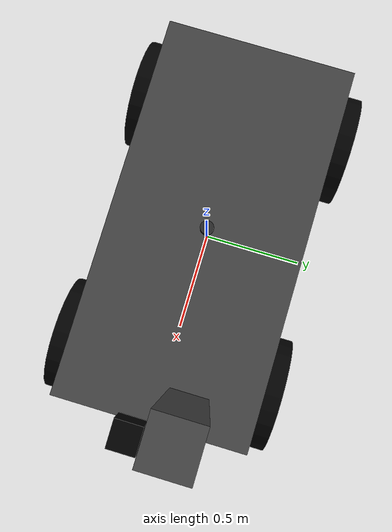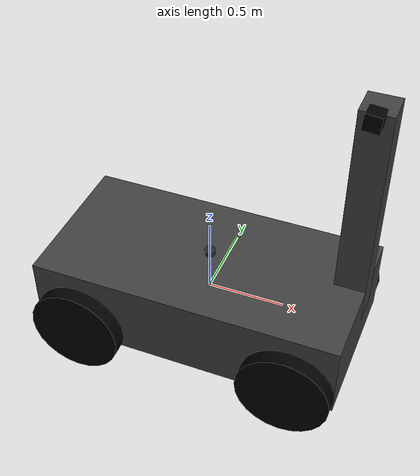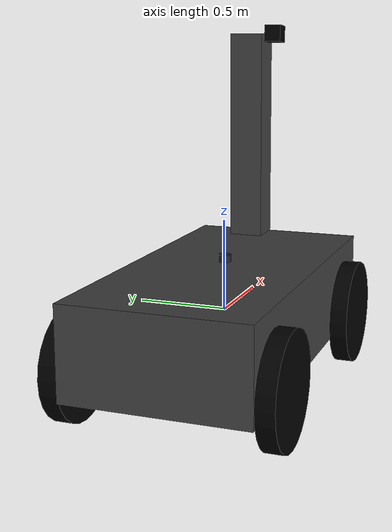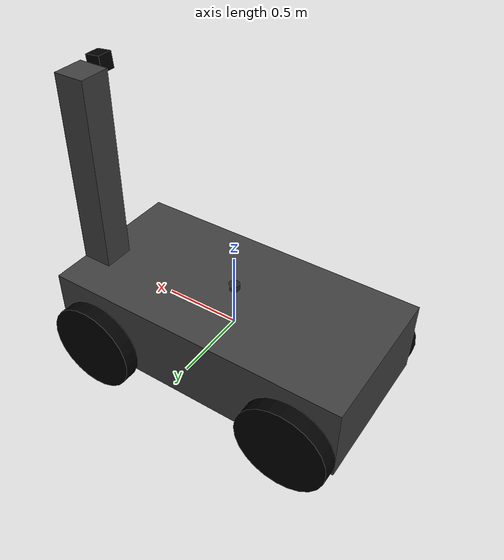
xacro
<?xml version="1.0"?>

<robot name="ackermann_steering_vehicle" xmlns:xacro="http://www.ros.org/wiki/xacro">

  <!-- Arguments -->
  <xacro:arg name="body_length" default="2.0" />
  <xacro:arg name="body_width" default="1.0" />
  <xacro:arg name="body_height" default="0.5" />
  <xacro:arg name="body_density" default="1000.0" />
  <xacro:arg name="wheel_radius" default="0.3" />
  <xacro:arg name="wheel_width" default="0.1" />
  <xacro:arg name="wheel_density" default="1000.0" />
  <xacro:arg name="max_steering_angle" default="0.6108" />
  <xacro:arg name="max_steering_angular_velocity" default="1.570796" />
  <xacro:arg name="max_steering_effort" default="1.0" />
  <xacro:arg name="max_velocity" default="1.0" />
  <xacro:arg name="max_effort" default="10.0" />
  <xacro:arg name="camera_box_size" default="0.1" />
  <xacro:arg name="camera_stick_size" default="0.2" />
  <xacro:arg name="camera_height" default="1.5" />
  <xacro:arg name="camera_pitch" default="0.1" />
  <xacro:arg name="camera_fov" default="1.396263" />
  <xacro:arg name="camera_fps" default="30" />
  <xacro:arg name="image_width" default="640" />
  <xacro:arg name="image_height" default="480" />

  <!-- Mathematical Constants -->
  <xacro:property name="PI" value="3.14159265"/>

  <!-- Vehicle Properties -->
  <xacro:property name="body_length" value="$(arg body_length)"/>
  <xacro:property name="body_width" value="$(arg body_width)"/>
  <xacro:property name="body_height" value="$(arg body_height)"/>
  <xacro:property name="body_density" value="$(arg body_density)"/>
  <xacro:property name="wheel_radius" value="$(arg wheel_radius)"/>
  <xacro:property name="wheel_width" value="$(arg wheel_width)"/>
  <xacro:property name="wheel_density" value="$(arg wheel_density)"/>
  <xacro:property name="max_steering_angle" value="$(arg max_steering_angle)"/>
  <xacro:property name="max_steering_angular_velocity" value="$(arg max_steering_angular_velocity)"/>
  <xacro:property name="max_steering_effort" value="$(arg max_steering_effort)"/>
  <xacro:property name="max_velocity" value="$(arg max_velocity)"/>
  <xacro:property name="max_effort" value="$(arg max_effort)"/>
  <xacro:property name="camera_box_size" value="$(arg camera_box_size)"/>
  <xacro:property name="camera_stick_size" value="$(arg camera_stick_size)"/>
  <xacro:property name="camera_height" value="$(arg camera_height)"/>
  <xacro:property name="camera_pitch" value="$(arg camera_pitch)"/>
  <xacro:property name="camera_fov" value="$(arg camera_fov)"/>
  <xacro:property name="camera_fps" value="$(arg camera_fps)"/>
  <xacro:property name="image_width" value="$(arg image_width)"/>
  <xacro:property name="image_height" value="$(arg image_height)"/>

  <xacro:property name="body_mass" value="${body_density * body_length * body_height * body_width}"/>
  <xacro:property name="body_inertia_x" value="${1.0/12.0 * body_mass * (body_height*body_height + body_width*body_width)}"/>
  <xacro:property name="body_inertia_y" value="${1.0/12.0 * body_mass * (body_length*body_length + body_height*body_height)}"/>
  <xacro:property name="body_inertia_z" value="${1.0/12.0 * body_mass * (body_length*body_length + body_width*body_width)}"/>
  <xacro:property name="wheel_separation" value="${body_width + wheel_width}"/>
  <xacro:property name="wheel_offset" value="${body_length/2 - wheel_radius}"/>
  <xacro:property name="wheel_mass" value="${wheel_density * PI * wheel_radius * wheel_radius * wheel_width}"/>
  <xacro:property name="wheel_inertia_x" value="${1.0/12.0 * wheel_mass * (3*wheel_radius*wheel_radius + wheel_width*wheel_width)}"/>
  <xacro:property name="wheel_inertia_y" value="${1.0/12.0 * wheel_mass * (3*wheel_radius*wheel_radius + wheel_width*wheel_width)}"/>
  <xacro:property name="wheel_inertia_z" value="${1.0/2.0 * wheel_mass * wheel_radius * wheel_radius}"/>
  <xacro:property name="max_wheel_angular_velocity" value="${max_velocity / wheel_radius}"/>

  <!-- Links -->

  <!-- Body Link -->
  <link name="body_link">
    <visual>
      <origin xyz="0.0 0.0 0.0" rpy="0.0 0.0 0.0"/>
      <geometry>
        <box size="${body_length} ${body_width} ${body_height}"/>
      </geometry>
      <material name="body_material">
        <color rgba="0.25 0.25 0.25 1.0"/>
      </material>
    </visual>
    <collision>
      <origin xyz="0.0 0.0 0.0" rpy="0.0 0.0 0.0"/>
      <geometry>
        <box size="${body_length} ${body_width} ${body_height}"/>
      </geometry>
    </collision>
    <inertial>
      <mass value="${body_mass}"/>
      <inertia ixx="${body_inertia_x}" ixy="0.0" ixz="0.0" iyy="${body_inertia_y}" iyz="0" izz="${body_inertia_z}"/>
      <origin xyz="0 0 0" rpy="0 0 0"/>
    </inertial>
  </link>

  <!-- Front Left Wheel -->
  <link name="front_left_wheel_link">
    <visual>
      <origin xyz="0.0 0.0 0.0" rpy="1.570795 0.0 0.0"/>
      <geometry>
        <cylinder radius="${wheel_radius}" length="${wheel_width}"/>
      </geometry>
      <material name="wheel_material">
        <color rgba="0.0 0.0 0.0 1.0"/>
      </material>
    </visual>
    <collision>
      <origin xyz="0.0 0.0 0.0" rpy="1.570795 0.0 0.0"/>
      <geometry>
        <cylinder radius="${wheel_radius}" length="${wheel_width}"/>
      </geometry>
    </collision>
    <inertial>
      <mass value="${wheel_mass}"/>
      <inertia ixx="${wheel_inertia_x}" ixy="0.0" ixz="0.0" iyy="${wheel_inertia_y}" iyz="0" izz="${wheel_inertia_z}"/>
      <origin xyz="0.0 0.0 0.0" rpy="1.570795 0.0 0.0"/>
    </inertial>
  </link>

    <!-- Front Left Wheel Steering -->
  <link name="front_left_steering_link">
    <visual>
      <origin xyz="0.0 0.0 0.0" rpy="1.570795 0.0 0.0"/>
      <geometry>
        <cylinder length="0.001" radius="0.01"/>
      </geometry>
      <material name="wheel_material">
        <color rgba="0.0 0.0 0.0 1.0"/>
      </material>
    </visual>
    <inertial>
      <mass value="0.01"/>
      <inertia ixx="1e-5" ixy="0.0" ixz="0.0" iyy="1e-5" iyz="0.0" izz="1e-5"/>
      <origin xyz="0.0 0.0 0.0" rpy="1.570795 0.0 0.0"/>
    </inertial>
  </link>

  <!-- Front Right Wheel -->
  <link name="front_right_wheel_link">
    <visual>
      <origin xyz="0.0 0.0 0.0" rpy="1.570795 0.0 0.0"/>
      <geometry>
        <cylinder radius="${wheel_radius}" length="${wheel_width}"/>
      </geometry>
      <material name="wheel_material">
        <color rgba="0.0 0.0 0.0 1.0"/>
      </material>
    </visual>
    <collision>
      <origin xyz="0.0 0.0 0.0" rpy="1.570795 0.0 0.0"/>
      <geometry>
        <cylinder radius="${wheel_radius}" length="${wheel_width}"/>
      </geometry>
    </collision>
    <inertial>
      <mass value="${wheel_mass}"/>
      <inertia ixx="${wheel_inertia_x}" ixy="0.0" ixz="0.0" iyy="${wheel_inertia_y}" iyz="0" izz="${wheel_inertia_z}"/>
      <origin xyz="0.0 0.0 0.0" rpy="1.570795 0.0 0.0"/>
    </inertial>
  </link>

  <!-- Front Right Wheel Steering -->
  <link name="front_right_steering_link">
    <visual>
      <origin xyz="0.0 0.0 0.0" rpy="1.570795 0.0 0.0"/>
      <geometry>
        <cylinder length="0.001" radius="0.01"/>
      </geometry>
      <material name="wheel_material">
        <color rgba="0.0 0.0 0.0 1.0"/>
      </material>
    </visual>
    <inertial>
      <mass value="0.01"/>
      <inertia ixx="1e-5" ixy="0.0" ixz="0.0" iyy="1e-5" iyz="0.0" izz="1e-5"/>
      <origin xyz="0.0 0.0 0.0" rpy="1.570795 0.0 0.0"/>
    </inertial>
  </link>

  <!-- Rear Left Wheel -->
  <link name="rear_left_wheel_link">
    <visual>
      <origin xyz="0.0 0.0 0.0" rpy="1.570795 0.0 0.0"/>
      <geometry>
        <cylinder radius="${wheel_radius}" length="${wheel_width}"/>
      </geometry>
      <material name="wheel_material">
        <color rgba="0.0 0.0 0.0 1.0"/>
      </material>
    </visual>
    <collision>
      <origin xyz="0.0 0.0 0.0" rpy="1.570795 0.0 0.0"/>
      <geometry>
        <cylinder radius="${wheel_radius}" length="${wheel_width}"/>
      </geometry>
    </collision>
    <inertial>
      <mass value="${wheel_mass}"/>
      <inertia ixx="${wheel_inertia_x}" ixy="0.0" ixz="0.0" iyy="${wheel_inertia_y}" iyz="0" izz="${wheel_inertia_z}"/>
      <origin xyz="0.0 0.0 0.0" rpy="1.570795 0.0 0.0"/>
    </inertial>
  </link>

  <!-- Rear Right Wheel -->
  <link name="rear_right_wheel_link">
    <visual>
      <origin xyz="0.0 0.0 0.0" rpy="1.570795 0.0 0.0"/>
      <geometry>
        <cylinder radius="${wheel_radius}" length="${wheel_width}"/>
      </geometry>
      <material name="wheel_material">
        <color rgba="0.0 0.0 0.0 1.0"/>
      </material>
    </visual>
    <collision>
      <origin xyz="0.0 0.0 0.0" rpy="1.570795 0.0 0.0"/>
      <geometry>
        <cylinder radius="${wheel_radius}" length="${wheel_width}"/>
      </geometry>
    </collision>
    <inertial>
      <mass value="${wheel_mass}"/>
      <inertia ixx="${wheel_inertia_x}" ixy="0.0" ixz="0.0" iyy="${wheel_inertia_y}" iyz="0" izz="${wheel_inertia_z}"/>
      <origin xyz="0.0 0.0 0.0" rpy="1.570795 0.0 0.0"/>
    </inertial>
  </link>

  <!-- Camera Stick Link -->
  <link name="camera_stick_link">
    <collision>
      <origin xyz="0 0 0" rpy="0 0 0"/>
      <geometry>
        <box size="${camera_stick_size} ${camera_stick_size} ${camera_height}"/>
      </geometry>
    </collision>

    <visual>
      <origin xyz="0 0 0" rpy="0 0 0"/>
      <geometry>
        <box size="${camera_stick_size} ${camera_stick_size} ${camera_height}"/>
      </geometry>

      <material name="camera_stick_material">
        <color rgba="0.25 0.25 0.25 1.0"/>
      </material>
    </visual>

    <inertial>
      <mass value="1e-5" />
      <origin xyz="0 0 0" rpy="0 0 0"/>
      <inertia ixx="1e-6" ixy="0" ixz="0" iyy="1e-6" iyz="0" izz="1e-6" />
    </inertial>
  </link>

  <!-- Camera Link -->
  <link name="camera_link">
    <collision>
      <origin xyz="0 0 0" rpy="0 0 0"/>
      <geometry>
        <box size="${camera_box_size} ${camera_box_size} ${camera_box_size}"/>
      </geometry>
    </collision>

    <visual>
      <origin xyz="0 0 0" rpy="0 0 0"/>
      <geometry>
        <box size="${camera_box_size} ${camera_box_size} ${camera_box_size}"/>
      </geometry>

      <material name="camera_material">
        <color rgba="0.0 0.0 0.0 1.0"/>
      </material>
    </visual>

    <inertial>
      <mass value="1e-5" />
      <origin xyz="0 0 0" rpy="0 0 0"/>
      <inertia ixx="1e-6" ixy="0" ixz="0" iyy="1e-6" iyz="0" izz="1e-6" />
    </inertial>
  </link>

  <!-- LiDAR Link -->
  <link name="lidar_link">
    <visual>
      <origin xyz="0 0 0" rpy="0 0 0"/>
      <geometry>
        <cylinder radius="0.035" length="0.04"/>
      </geometry>
      <material name="lidar_material">
        <color rgba="0.15 0.15 0.15 1.0"/>
      </material>
    </visual>
    <collision>
      <origin xyz="0 0 0" rpy="0 0 0"/>
      <geometry>
        <cylinder radius="0.035" length="0.04"/>
      </geometry>
    </collision>
    <inertial>
      <mass value="0.05"/>
      <origin xyz="0 0 0" rpy="0 0 0"/>
      <inertia ixx="1e-5" ixy="0" ixz="0" iyy="1e-5" iyz="0" izz="1e-5"/>
    </inertial>
  </link>

  <!-- Joints -->

  <!-- Front Left Steering Joint -->
  <joint name="front_left_steering_joint" type="revolute">
    <origin xyz="${wheel_offset} ${wheel_separation/2} -${wheel_radius/2}" rpy="0 0 0"/>
    <parent link="body_link"/>
    <child link="front_left_steering_link"/>
    <axis xyz="0 0 1"/>
    <limit effort="${max_steering_effort}" lower="${-max_steering_angle}" upper="${max_steering_angle}" velocity="${max_steering_angular_velocity}"/>
    <dynamics damping="0.1" friction="0.1"/>
  </joint>

  <!-- Front Left Wheel Joint -->
  <joint name="front_left_wheel_joint" type="continuous">
    <origin xyz="0 0 0" rpy="0 0 0"/>
    <parent link="front_left_steering_link"/>
    <child link="front_left_wheel_link"/>
    <axis xyz="0 1 0"/>
    <limit effort="${max_effort}" velocity="${max_wheel_angular_velocity}"/>
    <dynamics damping="0.1" friction="0.1"/>
  </joint>

  <!-- Front Right Steering Joint -->
  <joint name="front_right_steering_joint" type="revolute">
    <origin xyz="${wheel_offset} ${-wheel_separation/2} -${wheel_radius/2}" rpy="0 0 0"/>
    <parent link="body_link"/>
    <child link="front_right_steering_link"/>
    <axis xyz="0 0 1"/>
    <limit effort="${max_steering_effort}" lower="${-max_steering_angle}" upper="${max_steering_angle}" velocity="${max_steering_angular_velocity}"/>
    <dynamics damping="0.1" friction="0.1"/>
  </joint>

  <!-- Front Right Wheel Joint -->
  <joint name="front_right_wheel_joint" type="continuous">
    <origin xyz="0 0 0" rpy="0 0 0"/>
    <parent link="front_right_steering_link"/>
    <child link="front_right_wheel_link"/>
    <axis xyz="0 1 0"/>
    <limit effort="${max_effort}" velocity="${max_wheel_angular_velocity}"/>
    <dynamics damping="0.1" friction="0.1"/>
  </joint>

  <!-- Rear Left Wheel Joint -->
  <joint name="rear_left_wheel_joint" type="continuous">
    <origin xyz="-${wheel_offset} ${wheel_separation/2} -${wheel_radius/2}" rpy="0 0 0"/>
    <parent link="body_link"/>
    <child link="rear_left_wheel_link"/>
    <axis xyz="0 1 0"/>
    <limit effort="${max_effort}" velocity="${max_wheel_angular_velocity}"/>
    <dynamics damping="0.1" friction="0.1"/>
  </joint>

  <!-- Rear Right Wheel Joint -->
  <joint name="rear_right_wheel_joint" type="continuous">
    <origin xyz="-${wheel_offset} ${-wheel_separation/2} -${wheel_radius/2}" rpy="0 0 0"/>
    <parent link="body_link"/>
    <child link="rear_right_wheel_link"/>
    <axis xyz="0 1 0"/>
    <limit effort="${max_effort}" velocity="${max_wheel_angular_velocity}"/>
    <dynamics damping="0.1" friction="0.1"/>
  </joint>

  <!-- Camera Stick Joint -->
  <joint name="camera_stick_joint" type="fixed">
    <axis xyz="0 1 0" />
    <origin xyz="${body_length/2 - camera_stick_size/2} ${camera_box_size/2 + camera_stick_size/2} ${camera_height/2}" rpy="0.0 0.0 0.0"/>
    <parent link="body_link"/>
    <child link="camera_stick_link"/>
  </joint>

  <!-- Camera Joint -->
  <joint name="camera_joint" type="fixed">
    <axis xyz="0 1 0" />
    <origin xyz="0.0 ${-camera_box_size/2 - camera_stick_size/2} ${camera_height/2}" rpy="0 ${camera_pitch} 0"/>
    <parent link="camera_stick_link"/>
    <child link="camera_link"/>
  </joint>

  <!-- LiDAR Joint -->
  <joint name="lidar_joint" type="fixed">
    <origin xyz="0.0 0.0 ${body_height/2 + 0.04}" rpy="0 0 0"/>
    <parent link="body_link"/>
    <child link="lidar_link"/>
  </joint>

  <!-- Gazebo Parameters -->
  <gazebo reference="body_link">
    <mu1>0.0001</mu1>
    <mu2>0.0001</mu2>
  </gazebo>

  <gazebo reference="front_right_wheel_link">
    <mu1>100.0</mu1>
    <mu2>100.0</mu2>
  </gazebo>

  <gazebo reference="front_left_wheel_link">
    <mu1>100.0</mu1>
    <mu2>100.0</mu2>
  </gazebo>

  <gazebo reference="rear_right_wheel_link">
    <mu1>100.0</mu1>
    <mu2>100.0</mu2>
  </gazebo>

  <gazebo reference="rear_left_wheel_link">
    <mu1>100.0</mu1>
    <mu2>100.0</mu2>
  </gazebo>

  <!-- Gazebo Control -->
  <ros2_control name="control" type="system">
    <hardware>
      <plugin>gz_ros2_control/GazeboSimSystem</plugin>
    </hardware>

    <joint name="front_left_steering_joint">
      <command_interface name="position">
        <param name="min">${-max_steering_angle}</param>
        <param name="max">${max_steering_angle}</param>
      </command_interface>

      <state_interface name="position"/>
      <state_interface name="velocity"/>
      <state_interface name="effort"/>
    </joint>

    <joint name="front_right_steering_joint">
      <command_interface name="position">
        <param name="min">${-max_steering_angle}</param>
        <param name="max">${max_steering_angle}</param>
      </command_interface>

      <state_interface name="position"/>
      <state_interface name="velocity"/>
      <state_interface name="effort"/>
    </joint>

    <joint name="rear_left_wheel_joint">
      <command_interface name="velocity">
        <param name="min">${-max_wheel_angular_velocity}</param>
        <param name="max">${max_wheel_angular_velocity}</param>
      </command_interface>

      <state_interface name="position"/>
      <state_interface name="velocity"/>
      <state_interface name="effort"/>
    </joint>

    <joint name="rear_right_wheel_joint">
      <command_interface name="velocity">
        <param name="min">${-max_wheel_angular_velocity}</param>
        <param name="max">${max_wheel_angular_velocity}</param>
      </command_interface>

      <state_interface name="position"/>
      <state_interface name="velocity"/>
      <state_interface name="effort"/>
    </joint>

    <joint name="front_left_wheel_joint">
      <state_interface name="position"/>
      <state_interface name="velocity"/>
    </joint>

    <joint name="front_right_wheel_joint">
      <state_interface name="position"/>
      <state_interface name="velocity"/>
    </joint>
  </ros2_control>

  <!-- Gazebo Plugins -->
  <gazebo>
    <plugin filename="gz-sim-joint-state-publisher-system" name="gz::sim::systems::JointStatePublisher">
      <topic>joint_states</topic>
      <joint_name>front_left_steering_joint</joint_name>
      <joint_name>front_right_steering_joint</joint_name>
      <joint_name>front_left_wheel_joint</joint_name>
      <joint_name>front_right_wheel_joint</joint_name>
      <joint_name>rear_left_wheel_joint</joint_name>
      <joint_name>rear_right_wheel_joint</joint_name>
    </plugin>

    <plugin filename="gz_ros2_control-system" name="gz_ros2_control::GazeboSimROS2ControlPlugin">
      <parameters>$(find gazebo_ackermann_steering_vehicle)/config/gz_ros2_control.yaml</parameters>
    </plugin>

    <plugin filename="gz-sim-sensors-system" name="gz::sim::systems::Sensors">
      <render_engine>ogre2</render_engine>
    </plugin>

    <!-- Odometry publisher plugin -->
    <plugin filename="gz-sim-odometry-publisher-system" name="gz::sim::systems::OdometryPublisher">
      <dimensions>3</dimensions>
      <odom_frame>odom</odom_frame>
      <robot_base_frame>body_link</robot_base_frame>
      <odom_publish_frequency>50</odom_publish_frequency>
    </plugin>

    <!-- IMU plugin -->
    <plugin filename="gz-sim-imu-system" name="gz::sim::systems::Imu">
    </plugin>
  </gazebo>

  <!-- Camera -->
  <gazebo reference="camera_link">
    <sensor type="camera" name="vehicle_front_camera">
      <update_rate>${camera_fps}</update_rate>
      <visualize>true</visualize>
      <topic>camera</topic>

      <camera name="head">
        <horizontal_fov>${camera_fov}</horizontal_fov>
        <image>
          <width>${image_width}</width>
          <height>${image_height}</height>
          <format>R8G8B8</format>
        </image>
        <clip>
          <near>0.02</near>
          <far>300</far>
        </clip>
        <noise>
          <type>gaussian</type>
          <mean>0.0</mean>
          <stddev>0.007</stddev>
        </noise>
      </camera>
    </sensor>
  </gazebo>

  <!-- 2D LiDAR Sensor -->
  <gazebo reference="lidar_link">
    <sensor type="gpu_lidar" name="vehicle_lidar">
      <update_rate>20</update_rate>
      <visualize>true</visualize>
      <topic>scan</topic>
      <ray>
        <scan>
          <horizontal>
            <samples>360</samples>
            <resolution>1</resolution>
            <min_angle>-3.14159265</min_angle>
            <max_angle>3.14159265</max_angle>
          </horizontal>
        </scan>
        <range>
          <min>0.10</min>
          <max>15.0</max>
          <resolution>0.01</resolution>
        </range>
        <noise>
          <type>gaussian</type>
          <mean>0.0</mean>
          <stddev>0.01</stddev>
        </noise>
      </ray>
    </sensor>
  </gazebo>

  <!-- IMU Sensor -->
  <gazebo reference="body_link">
    <sensor name="vehicle_imu" type="imu">
      <always_on>true</always_on>
      <update_rate>50</update_rate>
      <visualize>false</visualize>
      <topic>imu</topic>
      <imu>
        <angular_velocity>
          <x><noise type="gaussian"><mean>0.0</mean><stddev>0.001</stddev></noise></x>
          <y><noise type="gaussian"><mean>0.0</mean><stddev>0.001</stddev></noise></y>
          <z><noise type="gaussian"><mean>0.0</mean><stddev>0.001</stddev></noise></z>
        </angular_velocity>
        <linear_acceleration>
          <x><noise type="gaussian"><mean>0.0</mean><stddev>0.01</stddev></noise></x>
          <y><noise type="gaussian"><mean>0.0</mean><stddev>0.01</stddev></noise></y>
          <z><noise type="gaussian"><mean>0.0</mean><stddev>0.01</stddev></noise></z>
        </linear_acceleration>
      </imu>
    </sensor>
  </gazebo>

</robot>
